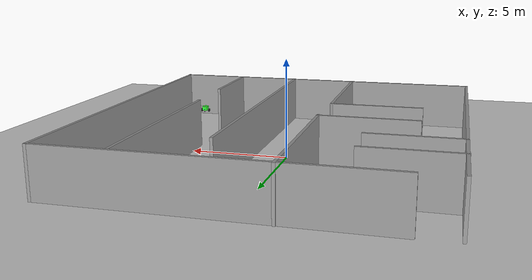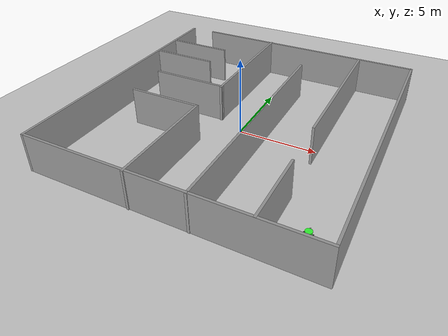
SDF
<?xml version="1.0"?>
<sdf version='1.11'>
  <world name='empty'>
    <physics name='1ms' type='ignored'>
      <max_step_size>0.001</max_step_size>
      <real_time_factor>1</real_time_factor>
      <real_time_update_rate>1000</real_time_update_rate>
    </physics>
    <plugin name='gz::sim::systems::Physics' filename='gz-sim-physics-system'/>
    <plugin name='gz::sim::systems::UserCommands' filename='gz-sim-user-commands-system'/>
    <plugin name='gz::sim::systems::SceneBroadcaster' filename='gz-sim-scene-broadcaster-system'/>
    <plugin name='gz::sim::systems::Contact' filename='gz-sim-contact-system'/>
    <plugin name="gz::sim::systems::Sensors" filename="gz-sim-sensors-system">
      <render_engine>ogre2</render_engine>
    </plugin>
    <gravity>0 0 -9.8</gravity>
    <magnetic_field>6e-06 2.3e-05 -4.2e-05</magnetic_field>
    <atmosphere type='adiabatic'/>
    <scene>
      <ambient>0.400000006 0.400000006 0.400000006 1</ambient>
      <background>0.699999988 0.699999988 0.699999988 1</background>
      <sky></sky>
      <shadows>false</shadows>
    </scene>
    <model name='ground_plane'>
      <static>true</static>
      <link name='link'>
        <collision name='collision'>
          <geometry>
            <plane>
              <normal>0 0 1</normal>
              <size>1000 1000</size>
            </plane>
          </geometry>
          <surface>
            <friction>
              <ode/>
            </friction>
            <bounce/>
            <contact/>
          </surface>
        </collision>
        <visual name='visual'>
          <geometry>
            <plane>
              <normal>0 0 1</normal>
              <size>1000 1000</size>
            </plane>
          </geometry>
          <material>
            <ambient>0.8 0.8 0.8 1</ambient>
            <diffuse>0.8 0.8 0.8 1</diffuse>
            <specular>0.8 0.8 0.8 1</specular>
          </material>
        </visual>
        <pose>0 0 0 0 -0 0</pose>
        <inertial>
          <pose>0 0 0 0 -0 0</pose>
          <mass>1</mass>
          <inertia>
            <ixx>1</ixx>
            <ixy>0</ixy>
            <ixz>0</ixz>
            <iyy>1</iyy>
            <iyz>0</iyz>
            <izz>1</izz>
          </inertia>
        </inertial>
        <enable_wind>false</enable_wind>
      </link>
      <pose>0 0 0 0 -0 0</pose>
      <self_collide>false</self_collide>
    </model>
    <light name='sun' type='directional'>
      <pose>0 0 10 0 -0 0</pose>
      <cast_shadows>true</cast_shadows>
      <intensity>1</intensity>
      <direction>-0.5 0.1 -0.9</direction>
      <diffuse>0.8 0.8 0.8 1</diffuse>
      <specular>0.2 0.2 0.2 1</specular>
      <attenuation>
        <range>1000</range>
        <linear>0.01</linear>
        <constant>0.90000000000000002</constant>
        <quadratic>0.001</quadratic>
      </attenuation>
      <spot>
        <inner_angle>0</inner_angle>
        <outer_angle>0</outer_angle>
        <falloff>0</falloff>
      </spot>
    </light>

    <model name="roundbot">
      <self_collide>true</self_collide>
      <pose>7 -7 0.5 0 0 1.5707</pose>
      <include merge="true">
        <uri>package://roundbot_description/models/roundbot</uri>
      </include>
    </model>

    <model name="maze">
      <static>true</static>
      <self_collide>false</self_collide>
      <pose>0 0 0 0 0 0</pose>
      <include merge="true">
        <uri>package://ece5532_gazebo/models/maze</uri>
      </include>
    </model>
  </world>
</sdf>

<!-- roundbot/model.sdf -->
<sdf version="1.11">
  <model name='roundbot'>
    <link name="base_footprint">
      <pose>0 0 0 0 0 0</pose>
    </link>

    <link name="chassis">
      <pose>0 0 0.2375 0 0 0</pose>

      <visual name="visual_chassis">
        <geometry>
          <cylinder>
            <radius>0.19</radius>
            <length>0.25</length>
          </cylinder>
        </geometry>

        <material>
          <ambient>0.2 1.0 0.2 1</ambient>
          <diffuse>0.2 1.0 0.2 1</diffuse>
          <specular>0.2 1.0 0.2 1</specular>
        </material>
      </visual>
      <visual name="front_caster_post">
        <pose>0.18 0 -0.125 0 0 0</pose>
        <geometry>
          <cylinder>
            <radius>0.01</radius>
            <length>0.1</length>
          </cylinder>
        </geometry>

        <material>
          <ambient>0.2 1.0 0.2 1</ambient>
          <diffuse>0.2 1.0 0.2 1</diffuse>
          <specular>0.2 1.0 0.2 1</specular>
        </material>
      </visual>
      <visual name="visual_front_caster">
        <pose>0.18 0 -0.2 0 0 0</pose>
        <geometry>
          <sphere>
            <radius>0.025</radius>
          </sphere>
        </geometry>

        <material>
          <ambient>0.2 0.2 0.2 1</ambient>
          <diffuse>0.2 0.2 0.2 1</diffuse>
          <specular>0.2 0.2 0.2 1</specular>
        </material>
      </visual>
      <visual name="rear_caster_post">
        <pose>-0.18 0 -0.125 0 0 0</pose>
        <geometry>
          <cylinder>
            <radius>0.01</radius>
            <length>0.1</length>
          </cylinder>
        </geometry>

        <material>
          <ambient>0.2 1.0 0.2 1</ambient>
          <diffuse>0.2 1.0 0.2 1</diffuse>
          <specular>0.2 1.0 0.2 1</specular>
        </material>
      </visual>
      <visual name="visual_rear_caster">
        <pose>-0.18 0 -0.2 0 0 0</pose>
        <geometry>
          <sphere>
            <radius>0.025</radius>
          </sphere>
        </geometry>

        <material>
          <ambient>0.2 0.2 0.2 1</ambient>
          <diffuse>0.2 0.2 0.2 1</diffuse>
          <specular>0.2 0.2 0.2 1</specular>
        </material>
      </visual>

      <collision name="collision_chassis">
        <geometry>
          <cylinder>
            <radius>0.19</radius>
            <length>0.25</length>
          </cylinder>
        </geometry>
      </collision>
      <collision name="collision_front_caster">
        <pose>0.18 0 -0.2 0 0 0</pose>
        <geometry>
          <sphere>
            <radius>0.025</radius>
          </sphere>
        </geometry>
        <surface>
          <friction>
            <ode>
              <mu>0</mu>
              <mu2>0</mu2>
            </ode>
          </friction>
        </surface>
      </collision>
      <collision name="collision_rear_caster">
        <pose>-0.18 0 -0.2 0 0 0</pose>
        <geometry>
          <sphere>
            <radius>0.025</radius>
          </sphere>
        </geometry>
        <surface>
          <friction>
            <ode>
              <mu>0</mu>
              <mu2>0</mu2>
            </ode>
          </friction>
        </surface>
      </collision>

      <inertial>
        <mass>2.0</mass>
        <inertia>
          <ixx>0.2847</ixx>
          <ixy>0</ixy>
          <ixz>0</ixz>
          <iyy>0.2847</iyy>
          <iyz>0</iyz>
          <izz>0.361</izz>
        </inertia>
      </inertial>
    </link>

    <link name="left_wheel">
      <pose>0 0.225 0.1125 -1.5707963267948966 0 0</pose>

      <visual name="visual_left_wheel">
        <geometry>
          <cylinder>
            <radius>0.1</radius>
            <length>0.05</length>
          </cylinder>
        </geometry>

        <material>
          <ambient>0.2 0.2 0.2 1</ambient>
          <diffuse>0.2 0.2 0.2 1</diffuse>
          <specular>0.2 0.2 0.2 1</specular>
        </material>
      </visual>
      <visual name="visual_left_hub1">
        <geometry>
          <box>
            <size>0.02 0.075 0.06</size>
          </box>
        </geometry>

        <material>
          <ambient>1.0 0.2 0.2 1</ambient>
          <diffuse>1.0 0.2 0.2 1</diffuse>
          <specular>1.0 0.2 0.2 1</specular>
        </material>
      </visual>
      <visual name="visual_left_hub2">
        <geometry>
          <box>
            <size>0.075 0.02 0.06</size>
          </box>
        </geometry>

        <material>
          <ambient>1.0 0.2 0.2 1</ambient>
          <diffuse>1.0 0.2 0.2 1</diffuse>
          <specular>1.0 0.2 0.2 1</specular>
        </material>
      </visual>

      <collision name="collision_left_wheel">
        <geometry>
          <cylinder>
            <radius>0.1</radius>
            <length>0.05</length>
          </cylinder>
        </geometry>
      </collision>

      <inertial>
        <mass>0.25</mass>
        <inertia>
          <ixx>0.01</ixx>
          <ixy>0</ixy>
          <ixz>0</ixz>
          <iyy>0.01</iyy>
          <iyz>0</iyz>
          <izz>0.02</izz>
        </inertia>
      </inertial>
    </link>

    <link name="right_wheel">
      <pose>0 -0.225 0.1125 -1.5707963267948966 0 0</pose>

      <visual name="visual_right_wheel">
        <geometry>
          <cylinder>
            <radius>0.1</radius>
            <length>0.05</length>
          </cylinder>
        </geometry>

        <material>
          <ambient>0.2 0.2 0.2 1</ambient>
          <diffuse>0.2 0.2 0.2 1</diffuse>
          <specular>0.2 0.2 0.2 1</specular>
        </material>
      </visual>
      <visual name="visual_right_hub1">
        <geometry>
          <box>
            <size>0.02 0.075 0.06</size>
          </box>
        </geometry>

        <material>
          <ambient>1.0 0.2 0.2 1</ambient>
          <diffuse>1.0 0.2 0.2 1</diffuse>
          <specular>1.0 0.2 0.2 1</specular>
        </material>
      </visual>
      <visual name="visual_right_hub2">
        <geometry>
          <box>
            <size>0.075 0.02 0.06</size>
          </box>
        </geometry>

        <material>
          <ambient>1.0 0.2 0.2 1</ambient>
          <diffuse>1.0 0.2 0.2 1</diffuse>
          <specular>1.0 0.2 0.2 1</specular>
        </material>
      </visual>

      <collision name="collision_right_wheel">
        <geometry>
          <cylinder>
            <radius>0.1</radius>
            <length>0.05</length>
          </cylinder>
        </geometry>
      </collision>

      <inertial>
        <mass>1.0</mass>
        <inertia>
          <ixx>0.01</ixx>
          <ixy>0</ixy>
          <ixz>0</ixz>
          <iyy>0.01</iyy>
          <iyz>0</iyz>
          <izz>0.02</izz>
        </inertia>
      </inertial>
    </link>

    <link name="lidar">
      <pose>0.2 0 0.2 0 0 0</pose>
      <visual name="visual_lidar">
        <geometry>
          <cylinder>
            <radius>0.025</radius>
            <length>0.025</length>
          </cylinder>
        </geometry>

        <material>
          <ambient>0.0 0.2 1.0 1</ambient>
          <diffuse>0.0 0.2 1.0 1</diffuse>
          <specular>0.0 0.2 1.0 1</specular>
        </material>
      </visual>
      <sensor name='gpu_lidar' type='gpu_lidar'>"
        <gz_frame_id>lidar</gz_frame_id>
        <pose>0 0 0 0 0 0</pose>
        <topic>scan</topic>
        <update_rate>10</update_rate>
        <ray>
            <scan>
                <horizontal>
                    <samples>1000</samples>
                    <resolution>1</resolution>
                    <min_angle>-2.0</min_angle>
                    <max_angle>2.0</max_angle>
                </horizontal>
                <vertical>
                    <samples>1</samples>
                    <resolution>0.01</resolution>
                    <min_angle>0</min_angle>
                    <max_angle>0</max_angle>
                </vertical>
            </scan>
            <range>
                <min>0.08</min>
                <max>30.0</max>
                <resolution>0.01</resolution>
            </range>
        </ray>
        <always_on>1</always_on>
        <visualize>true</visualize>
      </sensor>
    </link>

    <link name="camera">
      <pose>0.19 0 0.3625 0 0 0</pose>
      <inertial>
        <mass>0.1</mass>
        <inertia>
          <ixx>0.000166667</ixx>
          <iyy>0.000166667</iyy>
          <izz>0.000166667</izz>
        </inertia>
      </inertial>
      <collision name="collision">
        <geometry>
          <box>
            <size>0.05 0.05 0.05</size>
          </box>
        </geometry>
      </collision>
      <visual name="visual">
        <geometry>
          <box>
            <size>0.05 0.05 0.05</size>
          </box>
        </geometry>
      </visual>
      <sensor name="camera_sensor" type="camera">
        <always_on>1</always_on>
        <update_rate>30</update_rate>
        <camera>
          <horizontal_fov>1.047</horizontal_fov>
          <image>
            <width>640</width>
            <height>480</height>
            <format>R8G8B8</format>
          </image>
          <clip>
            <near>0.5</near>
            <far>1000</far>
          </clip>
          <optical_frame_id>camera_optical</optical_frame_id>
        </camera>
        <topic>image_raw</topic>
        <frame_id>camera</frame_id>
      </sensor>
    </link>

    <link name="camera_optical">
      <pose relative_to="camera">0 0 0 -1.570796326 0 -1.570796326</pose>
    </link>

    <joint name="left_wheel_joint" type="revolute">
      <parent>chassis</parent>
      <child>left_wheel</child>
      <axis>
        <xyz>0 0 1</xyz>
        <limit>
          <lower>-1.79769e+308</lower>
          <upper>1.79769e+308</upper>
        </limit>
      </axis>
    </joint>

    <joint name="chassis_joint" type="fixed">
      <parent>base_footprint</parent>
      <child>chassis</child>
    </joint>

    <joint name="lidar_joint" type="fixed">
      <parent>chassis</parent>
      <child>lidar</child>
    </joint>

    <joint name="camera_joint" type="fixed">
      <parent>chassis</parent>
      <child>camera</child>
    </joint>

    <joint name="camera_optical_joint" type="fixed">
      <parent>camera</parent>
      <child>camera_optical</child>
    </joint>

    <joint name="right_wheel_joint" type="revolute">
      <parent>chassis</parent>
      <child>right_wheel</child>
      <axis>
        <xyz>0 0 1</xyz>
        <limit>
          <lower>-1.79769e+308</lower>
          <upper>1.79769e+308</upper>
        </limit>
      </axis>
    </joint>

    <plugin filename="RoundbotInterfacePlugin" name="roundbot_gazebo::RoundbotInterfacePlugin">
      <pub_tf>false</pub_tf>
    </plugin>

    <plugin filename="gz-sim-joint-state-publisher-system" name="gz::sim::systems::JointStatePublisher">
      <topic>/model/roundbot/joint_states</topic>
    </plugin>
  </model>
</sdf>

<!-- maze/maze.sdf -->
<sdf version='1.11'>
  <model name='maze'>
    <pose>-0.02997 0.006432 0 0 -0 0</pose>
    <link name='Wall_11'>
      <collision name='Wall_11_Collision'>
        <geometry>
          <box>
            <size>4.5 0.15 2.5</size>
          </box>
        </geometry>
        <pose>0 0 1.25 0 -0 0</pose>
      </collision>
      <visual name='Wall_11_Visual'>
        <pose>0 0 1.25 0 -0 0</pose>
        <geometry>
          <box>
            <size>4.5 0.15 2.5</size>
          </box>
        </geometry>
        <material>
          <script>
            <uri>file://media/materials/scripts/gazebo.material</uri>
            <name>Gazebo/Grey</name>
          </script>
          <ambient>1 1 1 1</ambient>
        </material>
      </visual>
      <pose>5.14424 -6.6059 0 0 -0 1.5708</pose>
    </link>
    <link name='Wall_13'>
      <collision name='Wall_13_Collision'>
        <geometry>
          <box>
            <size>15 0.15 2.5</size>
          </box>
        </geometry>
        <pose>0 0 1.25 0 -0 0</pose>
      </collision>
      <visual name='Wall_13_Visual'>
        <pose>0 0 1.25 0 -0 0</pose>
        <geometry>
          <box>
            <size>15 0.15 2.5</size>
          </box>
        </geometry>
        <material>
          <script>
            <uri>file://media/materials/scripts/gazebo.material</uri>
            <name>Gazebo/Grey</name>
          </script>
          <ambient>1 1 1 1</ambient>
        </material>
      </visual>
      <pose>1.72091 -1.40216 0 0 -0 1.5708</pose>
    </link>
    <link name='Wall_15'>
      <collision name='Wall_15_Collision'>
        <geometry>
          <box>
            <size>4.5 0.15 2.5</size>
          </box>
        </geometry>
        <pose>0 0 1.25 0 -0 0</pose>
      </collision>
      <visual name='Wall_15_Visual'>
        <pose>0 0 1.25 0 -0 0</pose>
        <geometry>
          <box>
            <size>4.5 0.15 2.5</size>
          </box>
        </geometry>
        <material>
          <script>
            <uri>file://media/materials/scripts/gazebo.material</uri>
            <name>Gazebo/Grey</name>
          </script>
          <ambient>1 1 1 1</ambient>
        </material>
      </visual>
      <pose>-6.533 5.93017 0 0 -0 3.14159</pose>
    </link>
    <link name='Wall_17'>
      <collision name='Wall_17_Collision'>
        <geometry>
          <box>
            <size>4.5 0.15 2.5</size>
          </box>
        </geometry>
        <pose>0 0 1.25 0 -0 0</pose>
      </collision>
      <visual name='Wall_17_Visual'>
        <pose>0 0 1.25 0 -0 0</pose>
        <geometry>
          <box>
            <size>4.5 0.15 2.5</size>
          </box>
        </geometry>
        <material>
          <script>
            <uri>file://media/materials/scripts/gazebo.material</uri>
            <name>Gazebo/Grey</name>
          </script>
          <ambient>1 1 1 1</ambient>
        </material>
      </visual>
      <pose>-6.51286 3.70963 0 0 -0 0</pose>
    </link>
    <link name='Wall_19'>
      <collision name='Wall_19_Collision'>
        <geometry>
          <box>
            <size>8.25 0.15 2.5</size>
          </box>
        </geometry>
        <pose>0 0 1.25 0 -0 0</pose>
      </collision>
      <visual name='Wall_19_Visual'>
        <pose>0 0 1.25 0 -0 0</pose>
        <geometry>
          <box>
            <size>8.25 0.15 2.5</size>
          </box>
        </geometry>
        <material>
          <script>
            <uri>file://media/materials/scripts/gazebo.material</uri>
            <name>Gazebo/Grey</name>
          </script>
          <ambient>1 1 1 1</ambient>
        </material>
      </visual>
      <pose>-1.74868 4.79891 0 0 -0 1.5708</pose>
    </link>
    <link name='Wall_21'>
      <collision name='Wall_21_Collision'>
        <geometry>
          <box>
            <size>5 0.15 2.5</size>
          </box>
        </geometry>
        <pose>0 0 1.25 0 -0 0</pose>
      </collision>
      <visual name='Wall_21_Visual'>
        <pose>0 0 1.25 0 -0 0</pose>
        <geometry>
          <box>
            <size>5 0.15 2.5</size>
          </box>
        </geometry>
        <material>
          <script>
            <uri>file://media/materials/scripts/gazebo.material</uri>
            <name>Gazebo/Grey</name>
          </script>
          <ambient>1 1 1 1</ambient>
        </material>
      </visual>
      <pose>-4.15544 0.823025 0 0 -0 0</pose>
    </link>
    <link name='Wall_23'>
      <collision name='Wall_23_Collision'>
        <geometry>
          <box>
            <size>4.75 0.15 2.5</size>
          </box>
        </geometry>
        <pose>0 0 1.25 0 -0 0</pose>
      </collision>
      <visual name='Wall_23_Visual'>
        <pose>0 0 1.25 0 -0 0</pose>
        <geometry>
          <box>
            <size>4.75 0.15 2.5</size>
          </box>
        </geometry>
        <material>
          <script>
            <uri>file://media/materials/scripts/gazebo.material</uri>
            <name>Gazebo/Grey</name>
          </script>
          <ambient>1 1 1 1</ambient>
        </material>
      </visual>
      <pose>-4.18792 -1.99891 0 0 -0 0</pose>
    </link>
    <link name='Wall_25'>
      <collision name='Wall_25_Collision'>
        <geometry>
          <box>
            <size>7 0.15 2.5</size>
          </box>
        </geometry>
        <pose>0 0 1.25 0 -0 0</pose>
      </collision>
      <visual name='Wall_25_Visual'>
        <pose>0 0 1.25 0 -0 0</pose>
        <geometry>
          <box>
            <size>7 0.15 2.5</size>
          </box>
        </geometry>
        <material>
          <script>
            <uri>file://media/materials/scripts/gazebo.material</uri>
            <name>Gazebo/Grey</name>
          </script>
          <ambient>1 1 1 1</ambient>
        </material>
      </visual>
      <pose>-1.88792 -5.42391 0 0 0 -1.5708</pose>
    </link>
    <link name='Wall_3'>
      <collision name='Wall_3_Collision'>
        <geometry>
          <box>
            <size>17.686 0.15 2.5</size>
          </box>
        </geometry>
        <pose>0 0 1.25 0 -0 0</pose>
      </collision>
      <visual name='Wall_3_Visual'>
        <pose>0 0 1.25 0 -0 0</pose>
        <geometry>
          <box>
            <size>17.686 0.15 2.5</size>
          </box>
        </geometry>
        <material>
          <script>
            <uri>file://media/materials/scripts/gazebo.material</uri>
            <name>Gazebo/Grey</name>
          </script>
          <ambient>1 1 1 1</ambient>
        </material>
      </visual>
      <pose>-8.68826 -0.027946 0 0 0 -1.5708</pose>
    </link>
    <link name='Wall_4'>
      <collision name='Wall_4_Collision'>
        <geometry>
          <box>
            <size>17.5 0.15 2.5</size>
          </box>
        </geometry>
        <pose>0 0 1.25 0 -0 0</pose>
      </collision>
      <visual name='Wall_4_Visual'>
        <pose>0 0 1.25 0 -0 0</pose>
        <geometry>
          <box>
            <size>17.5 0.15 2.5</size>
          </box>
        </geometry>
        <material>
          <script>
            <uri>file://media/materials/scripts/gazebo.material</uri>
            <name>Gazebo/Grey</name>
          </script>
          <ambient>1 1 1 1</ambient>
        </material>
      </visual>
      <pose>0.032996 -8.79547 0 0 -0 0</pose>
    </link>
    <link name='Wall_6'>
      <collision name='Wall_6_Collision'>
        <geometry>
          <box>
            <size>17.75 0.15 2.5</size>
          </box>
        </geometry>
        <pose>0 0 1.25 0 -0 0</pose>
      </collision>
      <visual name='Wall_6_Visual'>
        <pose>0 0 1.25 0 -0 0</pose>
        <geometry>
          <box>
            <size>17.75 0.15 2.5</size>
          </box>
        </geometry>
        <material>
          <script>
            <uri>file://media/materials/scripts/gazebo.material</uri>
            <name>Gazebo/Grey</name>
          </script>
          <ambient>1 1 1 1</ambient>
        </material>
      </visual>
      <pose>8.708 0.004531 0 0 -0 1.5708</pose>
    </link>
    <link name='Wall_7'>
      <collision name='Wall_7_Collision'>
        <geometry>
          <box>
            <size>15.75 0.15 2.5</size>
          </box>
        </geometry>
        <pose>0 0 1.25 0 -0 0</pose>
      </collision>
      <visual name='Wall_7_Visual'>
        <pose>0 0 1.25 0 -0 0</pose>
        <geometry>
          <box>
            <size>15.75 0.15 2.5</size>
          </box>
        </geometry>
        <material>
          <script>
            <uri>file://media/materials/scripts/gazebo.material</uri>
            <name>Gazebo/Grey</name>
          </script>
          <ambient>1 1 1 1</ambient>
        </material>
      </visual>
      <pose>0.907996 8.80453 0 0 -0 3.14159</pose>
    </link>
    <link name='Wall_9'>
      <collision name='Wall_9_Collision'>
        <geometry>
          <box>
            <size>10 0.15 2.5</size>
          </box>
        </geometry>
        <pose>0 0 1.25 0 -0 0</pose>
      </collision>
      <visual name='Wall_9_Visual'>
        <pose>0 0 1.25 0 -0 0</pose>
        <geometry>
          <box>
            <size>10 0.15 2.5</size>
          </box>
        </geometry>
        <material>
          <script>
            <uri>file://media/materials/scripts/gazebo.material</uri>
            <name>Gazebo/Grey</name>
          </script>
          <ambient>1 1 1 1</ambient>
        </material>
      </visual>
      <pose>5.10845 3.80389 0 0 -0 1.5708</pose>
    </link>
    <static>1</static>
  </model>
</sdf>
